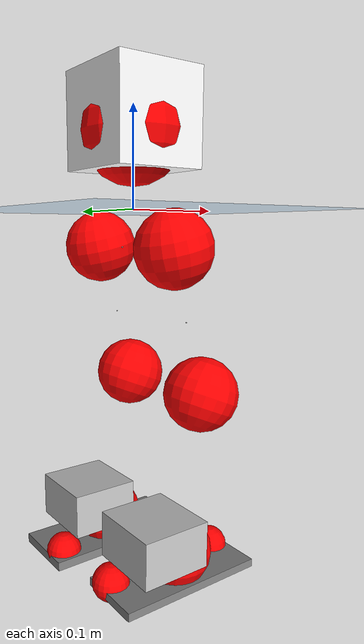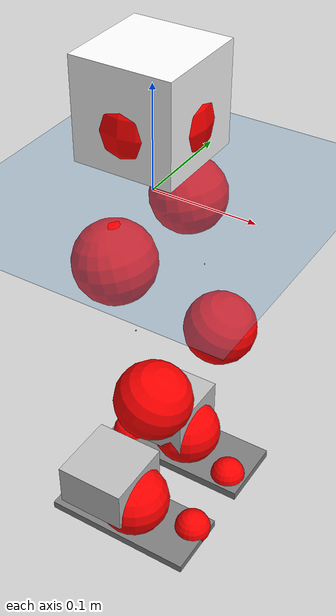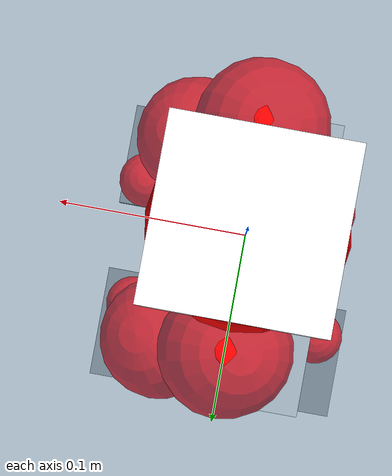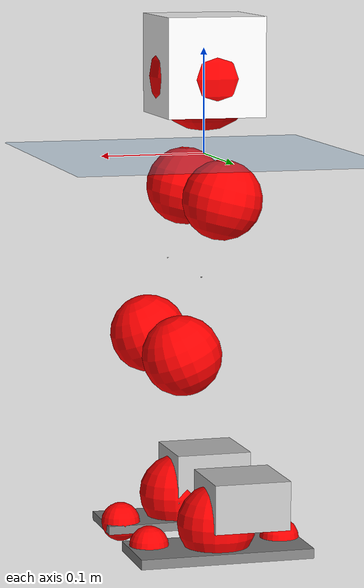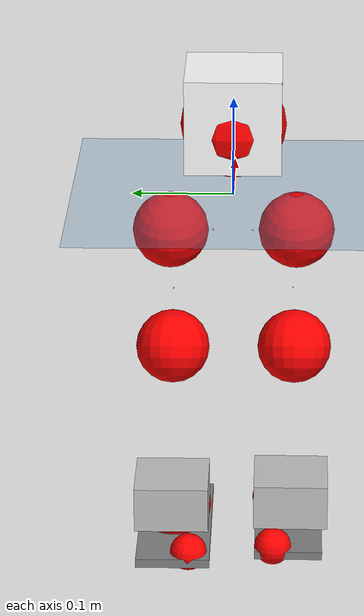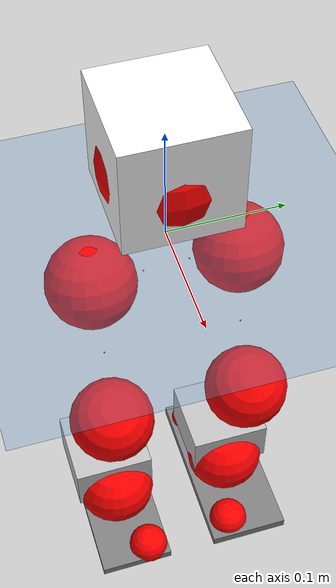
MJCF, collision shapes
<mujoco model="pi_12dof_release_v1">
  <compiler angle="radian" assetdir="assets" balanceinertia="true" inertiafromgeom="false"/>

  <option timestep="0.005" density="1.2" viscosity="2e-05"/>

  <size nkey="1"/>

  <visual>
    <quality shadowsize="8192"/>
    <map shadowclip="0.5"/>
  </visual>

  <default>
    <default class="/">
      <joint armature="0.01" damping="0.01" frictionloss="0.01"/>
      <geom contype="0" conaffinity="0" group="1" solref="-1000 -80"/>
      <site size="0.01 0.005 0.005" group="5"/>
      <general forcelimited="true" biastype="affine" gainprm="20" biasprm="0 -20 -0.5"/>
      <default class="foot">
        <geom size="0.0845 0.036 0.005" type="box" condim="6" group="4" priority="1" friction="0.9 0.2 0.2" solimp="0.015 1 0.005"/>
      </default>
      <default class="reward_collision_sphere">
        <geom group="5" rgba="1 0 0 1"/>
      </default>
    </default>
  </default>

  <asset>
    <texture type="skybox" colorspace="auto" name="//unnamed_texture_0" builtin="gradient" rgb1="0.95 0.95 0.95" rgb2="0.95 0.95 0.95" width="100" height="600"/>
    <texture type="2d" colorspace="auto" name="texplane" builtin="checker" rgb1="0.345 0.575 0.748" rgb2="0.345 0.575 0.748" markrgb="1 1 1" width="512" height="512"/>
    <material name="MatPlane" class="/" texture="texplane" texuniform="true" texrepeat="2 2" specular="0.9"/>
    <mesh name="baselink_1" class="/" file="baselink_1.STL"/>
    <mesh name="r_hip_pitch_link" class="/" file="r_hip_pitch_link.STL"/>
    <mesh name="r_hip_roll_link" class="/" file="r_hip_roll_link.STL"/>
    <mesh name="r_thigh_link" class="/" file="r_thigh_link.STL"/>
    <mesh name="r_calf_link" class="/" file="r_calf_link.STL"/>
    <mesh name="r_ankle_pitch_link" class="/" file="r_ankle_pitch_link.STL"/>
    <mesh name="r_ankle_roll_link" class="/" file="r_ankle_roll_link.STL"/>
    <mesh name="l_hip_pitch_link" class="/" file="l_hip_pitch_link.STL"/>
    <mesh name="l_hip_roll_link" class="/" file="l_hip_roll_link.STL"/>
    <mesh name="l_thigh_link" class="/" file="l_thigh_link.STL"/>
    <mesh name="l_calf_link" class="/" file="l_calf_link.STL"/>
    <mesh name="l_ankle_pitch_link" class="/" file="l_ankle_pitch_link.STL"/>
    <mesh name="l_ankle_roll_link" class="/" file="l_ankle_roll_link.STL"/>
  </asset>

  <worldbody>
    <geom name="floor" class="/" size="100 100 0.125" type="plane" group="0" material="MatPlane"/>
    <light name="toplight_shadow" class="/" pos="0 0 5" dir="0.0990148 0.0990148 -0.990148" type="directional" ambient="0.04 0.04 0.04" diffuse="0.55 0.55 0.55" specular="0.12 0.12 0.12"/>
    <light name="toplight_fill" class="/" pos="0 0 5" dir="0.0990148 0.0990148 -0.990148" type="directional" castshadow="false" ambient="0.04 0.04 0.04" diffuse="0.3 0.3 0.3" specular="0.08 0.08 0.08"/>
    <body name="trunk" pos="-0.000141753 -2.45454e-05 -0.00182502" quat="1 0.000186498 -0.000129258 0.000129978">
      <inertial pos="0.00237737 0.00236948 0.045658" quat="0.695263 0.00968549 0.00942728 0.718628" mass="1.77512" diaginertia="0.0079933 0.00283442 0.00594918"/>
      <joint name="//unnamed_joint_0" type="free"/>
      <geom name="//unnamed_geom_1" class="/" type="mesh" density="0" rgba="1 1 1 1" mesh="baselink_1"/>
      <geom name="//unnamed_geom_2" class="/" size="0.0470845 0.0470845 0.0470845" pos="0 0 0.0861095" type="box" rgba="1 1 1 1"/>
      <geom name="//unnamed_geom_3" class="reward_collision_sphere" size="0.051793" pos="0 0 0.0753458"/>
      <site name="imu" class="/" pos="-0.00353619 -0.00371297 -0.00264079" size="0.0094169"/>
      <camera name="track" class="/" pos="0 -1.58734 0" quat="0.707107 0.707107 0 0" mode="trackcom"/>
      <camera name="ego_camera" class="/" pos="0.0716274 0 0.193746" quat="-0.5 -0.5 0.5 0.5"/>
      <body name="r_hip_pitch_link" pos="0.000941143 -0.0189951 -0.0364152" quat="0.99219 0.000379425 -0.124733 0.000219518">
        <inertial pos="-0.00151052 -0.0440832 -0.000210651" quat="-0.0166691 0.704987 -0.029665 0.708403" mass="0.316826" diaginertia="8.73646e-05 3.10153e-05 0.000122833"/>
        <joint name="r_hip_pitch_joint" class="/" pos="0 0 0" axis="0.00821126 -0.999907 -0.0108708" stiffness="0.00663315" range="-1.74119 1.21705" armature="0.00900577" damping="0.00699296" frictionloss="0.00844654"/>
        <geom name="//unnamed_geom_4" class="/" type="mesh" density="0" rgba="0.75294 0.75294 0.75294 1" mesh="r_hip_pitch_link"/>
        <geom name="//unnamed_geom_5" class="/" size="0.000470845 0.000470845 0.000470845" type="box" rgba="0.75294 0.75294 0.75294 1"/>
        <body name="r_hip_roll_link" pos="0.000798829 -0.0436995 0.000644603" quat="1 3.10786e-05 8.57054e-05 3.95455e-05">
          <inertial pos="-0.0011694 -0.000589943 -0.0671819" quat="0.707193 -0.0773538 -0.0810698 0.698085" mass="0.309653" diaginertia="0.000265518 8.70692e-05 0.000173472"/>
          <joint name="r_hip_roll_joint" class="/" pos="0 0 0" axis="-0.999944 0.00347703 -0.010003" range="-0.117959 0.496726" armature="0.00974898" damping="0.0100685" frictionloss="0.00983155"/>
          <geom name="//unnamed_geom_6" class="/" type="mesh" density="0" rgba="0.75294 0.75294 0.75294 1" mesh="r_hip_roll_link"/>
          <geom name="//unnamed_geom_7" class="/" size="0.000470845 0.000470845 0.000470845" type="box" rgba="0.75294 0.75294 0.75294 1"/>
          <geom name="//unnamed_geom_8" class="reward_collision_sphere" size="0.0376676"/>
          <body name="r_thigh_link" pos="0.000287035 0.00251497 -0.0722014" quat="0.999999 0.00120934 0.000179108 -0.000521295">
            <inertial pos="0.000259186 0.000710134 -0.0516918" quat="0.737357 0.675503 -5.61328e-05 -0.000768767" mass="0.0924268" diaginertia="9.93423e-05 2.91128e-05 8.1941e-05"/>
            <joint name="r_thigh_joint" class="/" pos="0 0 0" axis="-0.000321678 -0.000692054 -1" range="-0.298449 0.556763" armature="0.0105574" damping="0.00300504" frictionloss="0.00947969"/>
            <geom name="//unnamed_geom_9" class="/" type="mesh" density="0" rgba="0.75294 0.75294 0.75294 1" mesh="r_thigh_link"/>
            <geom name="//unnamed_geom_10" class="/" size="0.000470845 0.000470845 0.000470845" type="box" rgba="0.75294 0.75294 0.75294 1"/>
            <body name="r_calf_link" pos="9.12569e-05 -0.00202505 -0.0761886" quat="0.947416 0.000923743 0.320002 -0.000262281">
              <inertial pos="-0.000936569 -0.00183985 -0.0741403" quat="0.999988 -0.00353568 0.000578935 0.00332557" mass="0.649574" diaginertia="0.00269369 0.00106119 0.000251955"/>
              <joint name="r_calf_joint" class="/" pos="0 0 0" axis="0.0130412 -0.999897 -0.00597063" stiffness="0.008617" range="-1.64833 0.649596" armature="0.00940105" damping="0.00800623" frictionloss="0.0098845"/>
              <geom name="//unnamed_geom_11" class="/" type="mesh" density="0" rgba="0.75294 0.75294 0.75294 1" mesh="r_calf_link"/>
              <geom name="//unnamed_geom_12" class="/" size="0.000470845 0.000470845 0.000470845" type="box" rgba="0.75294 0.75294 0.75294 1"/>
              <geom name="//unnamed_geom_13" class="reward_collision_sphere" size="0.0376676"/>
              <body name="r_ankle_pitch_link" pos="0.00329277 0.00172607 -0.150385" quat="0.980094 -0.000338292 -0.198532 -0.000279576">
                <inertial pos="0.00432589 0.00358095 -0.000192074" quat="0.00386779 0.707125 -0.00185103 0.707076" mass="0.151103" diaginertia="0.000244077 7.22708e-05 0.000176676"/>
                <joint name="r_ankle_pitch_joint" class="/" pos="0 0 0" axis="0.00079342 -0.999999 0.00108103" range="-1.32617 0.501185" armature="0.00950225" damping="0.0231826" frictionloss="0.0105837"/>
                <geom name="//unnamed_geom_14" class="/" type="mesh" density="0" rgba="0.75294 0.75294 0.75294 1" mesh="r_ankle_pitch_link"/>
                <geom name="//unnamed_geom_15" class="/" size="0.0367259 0.0376676 0.0235423" type="box" rgba="0.75294 0.75294 0.75294 1"/>
                <body name="r_ankle_roll_link" pos="0.0755005 0.00169499 0.00111804" quat="1 -0.000332209 0.000237932 2.3331e-05">
                  <inertial pos="-0.0225423 0.001112 -0.0129017" quat="0.559624 0.426692 0.436524 0.560537" mass="0.417437" diaginertia="0.000906966 0.000321587 0.000405366"/>
                  <joint name="r_ankle_roll_joint" class="/" pos="0 0 0" axis="-0.999996 -0.00248342 0.001355" range="-0.156015 0.166095" armature="0.00944791" damping="0.00826837" frictionloss="0.0106712"/>
                  <geom name="//unnamed_geom_16" class="/" type="mesh" density="0" rgba="0.75294 0.75294 0.75294 1" mesh="r_ankle_roll_link"/>
                  <geom name="//unnamed_geom_17" class="/" type="mesh" rgba="0.75294 0.75294 0.75294 1" mesh="r_ankle_roll_link"/>
                  <geom name="right_foot" class="foot" size="0.079037 0.0344478 0.00417517" pos="-0.0487066 0 -0.0473602"/>
                  <geom name="//unnamed_geom_19" class="reward_collision_sphere" size="0.0376676" pos="-0.0477516 0 -0.0215274"/>
                  <geom name="//unnamed_geom_20" class="reward_collision_sphere" size="0.0188338" pos="0.0143255 0.0158734 -0.0430547"/>
                  <geom name="//unnamed_geom_21" class="reward_collision_sphere" size="0.0188338" pos="-0.114604 0.0158734 -0.0430547"/>
                  <site name="right_foot" class="foot" pos="-0.0487066 0 -0.0473602" size="0.0094169"/>
                </body>
              </body>
            </body>
          </body>
        </body>
      </body>
      <body name="l_hip_pitch_link" pos="0.000167711 0.020254 -0.0355363" quat="0.992193 -0.000307644 -0.124711 -0.000322847">
        <inertial pos="0.000623501 0.0401352 -0.00127334" quat="-0.0265741 0.706033 0.0335664 0.706884" mass="0.314532" diaginertia="0.000100911 3.3671e-05 0.000145412"/>
        <joint name="l_hip_pitch_joint" class="/" pos="0 0 0" axis="2.37823e-06 1 1.13928e-05" range="-1.20226 1.69885" armature="0.00997696" damping="0.0133054" frictionloss="0.00827454"/>
        <geom name="//unnamed_geom_22" class="/" type="mesh" density="0" rgba="0.75294 0.75294 0.75294 1" mesh="l_hip_pitch_link"/>
        <geom name="//unnamed_geom_23" class="/" size="0.000470845 0.000470845 0.000470845" type="box" rgba="0.75294 0.75294 0.75294 1"/>
        <body name="l_hip_roll_link" pos="-0.000578281 0.041957 0.00011946" quat="1 1.11914e-05 2.39753e-05 -2.75745e-05">
          <inertial pos="-0.000381284 -0.00177544 -0.0653677" quat="0.698099 -0.0756452 -0.0767331 0.707848" mass="0.325609" diaginertia="0.00027666 8.9472e-05 0.000192654"/>
          <joint name="l_hip_roll_joint" class="/" pos="0 0 0" axis="-0.999997 0.00253939 -0.000680394" range="-0.447865 0.063914" armature="0.00903195" damping="0.00361007" frictionloss="0.00940462"/>
          <geom name="//unnamed_geom_24" class="/" type="mesh" density="0" rgba="0.75294 0.75294 0.75294 1" mesh="l_hip_roll_link"/>
          <geom name="//unnamed_geom_25" class="/" size="0.000470845 0.000470845 0.000470845" type="box" rgba="0.75294 0.75294 0.75294 1"/>
          <geom name="//unnamed_geom_26" class="reward_collision_sphere" size="0.0376676"/>
          <body name="l_thigh_link" pos="0.00159108 -0.00128952 -0.074685" quat="0.999999 -0.00100797 0.000744152 5.87327e-06">
            <inertial pos="0.00263337 -0.000730223 -0.0530051" quat="0.675453 0.737403 6.2515e-05 0.00020565" mass="0.0939496" diaginertia="0.000103567 3.17798e-05 8.908e-05"/>
            <joint name="l_thigh_joint" class="/" pos="0 0 0" axis="0.000546373 0.00579013 -0.999983" range="-0.621941 0.249086" armature="0.00946991" damping="0.0167242" frictionloss="0.00854972"/>
            <geom name="//unnamed_geom_27" class="/" type="mesh" density="0" rgba="0.75294 0.75294 0.75294 1" mesh="l_thigh_link"/>
            <geom name="//unnamed_geom_28" class="/" size="0.000470845 0.000470845 0.000470845" type="box" rgba="0.75294 0.75294 0.75294 1"/>
            <body name="l_calf_link" pos="0.000692026 0.00224836 -0.0754264" quat="0.947971 -5.85995e-05 0.318356 0.000834191">
              <inertial pos="-0.000458627 0.00262736 -0.0759155" quat="0.999824 0.0082081 0.00143851 0.0167973" mass="0.675589" diaginertia="0.0027891 0.00107707 0.000246899"/>
              <joint name="l_calf_joint" class="/" pos="0 0 0" axis="0.00351771 0.999992 -0.00201303" range="-0.670987 1.64746" armature="0.00934027" damping="0.00233276" frictionloss="0.00877342"/>
              <geom name="//unnamed_geom_29" class="/" type="mesh" density="0" rgba="0.75294 0.75294 0.75294 1" mesh="l_calf_link"/>
              <geom name="//unnamed_geom_30" class="/" size="0.000470845 0.000470845 0.000470845" type="box" rgba="0.75294 0.75294 0.75294 1"/>
              <geom name="//unnamed_geom_31" class="reward_collision_sphere" size="0.0376676"/>
              <body name="l_ankle_pitch_link" pos="0.000714942 -0.000392741 -0.153127" quat="0.980039 -9.74731e-05 -0.198805 -0.000175445">
                <inertial pos="0.00483529 0.00185972 0.000627134" quat="0.00474635 0.712623 -0.00151441 0.701529" mass="0.142363" diaginertia="0.000235063 6.72458e-05 0.000167403"/>
                <joint name="l_ankle_pitch_joint" class="/" pos="0 0 0" axis="-0.00794119 0.999902 -0.0115282" range="-0.51286 1.3045" armature="0.00955071" damping="0" frictionloss="0.00992038"/>
                <geom name="//unnamed_geom_32" class="/" type="mesh" density="0" rgba="0.75294 0.75294 0.75294 1" mesh="l_ankle_pitch_link"/>
                <geom name="//unnamed_geom_33" class="/" size="0.0367259 0.0376676 0.0235423" type="box" rgba="0.75294 0.75294 0.75294 1"/>
                <body name="l_ankle_roll_link" pos="0.0720172 -0.00180056 -0.000335443" quat="0.999999 -0.00100292 2.9272e-05 -0.00024982">
                  <inertial pos="-0.0238246 -0.0010224 -0.0154486" quat="0.570311 0.424096 0.434266 0.553445" mass="0.416623" diaginertia="0.000883945 0.000326825 0.000420378"/>
                  <joint name="l_ankle_roll_joint" class="/" pos="0 0 0" axis="-0.999913 0.0130948 -0.00153806" range="-0.147009 0.100909" armature="0.00942953" damping="0.00603438" frictionloss="0.00817888"/>
                  <geom name="//unnamed_geom_34" class="/" type="mesh" density="0" rgba="0.75294 0.75294 0.75294 1" mesh="l_ankle_roll_link"/>
                  <geom name="//unnamed_geom_35" class="/" type="mesh" rgba="0.75294 0.75294 0.75294 1" mesh="l_ankle_roll_link"/>
                  <geom name="left_foot" class="foot" size="0.0840145 0.0374708 0.00473473" pos="-0.0487066 0 -0.0473602"/>
                  <geom name="//unnamed_geom_37" class="reward_collision_sphere" size="0.0376676" pos="-0.0477516 0 -0.0215274"/>
                  <geom name="//unnamed_geom_38" class="reward_collision_sphere" size="0.0188338" pos="0.0143255 -0.0158734 -0.0430547"/>
                  <geom name="//unnamed_geom_39" class="reward_collision_sphere" size="0.0188338" pos="-0.114604 -0.0158734 -0.0430547"/>
                  <site name="left_foot" class="foot" pos="-0.0487066 0 -0.0473602" size="0.0094169"/>
                </body>
              </body>
            </body>
          </body>
        </body>
      </body>
    </body>
  </worldbody>

  <contact>
    <pair class="/" geom1="floor" geom2="right_foot" name="//unnamed_contact_1"/>
    <pair class="/" geom1="floor" geom2="left_foot" name="//unnamed_contact_0"/>
  </contact>

  <actuator>
    <general name="r_hip_pitch_joint" class="/" joint="r_hip_pitch_joint" forcerange="-18.4719 18.4719" gainprm="19.0571" biasprm="0 -19.0571 -0.459411"/>
    <general name="r_hip_roll_joint" class="/" joint="r_hip_roll_joint" forcerange="-19.9552 19.9552" gainprm="19.0571" biasprm="0 -19.0571 -0.459411"/>
    <general name="r_thigh_joint" class="/" joint="r_thigh_joint" forcerange="-18.9554 18.9554" gainprm="19.0571" biasprm="0 -19.0571 -0.459411"/>
    <general name="r_calf_joint" class="/" joint="r_calf_joint" forcerange="-19.1769 19.1769" gainprm="19.0571" biasprm="0 -19.0571 -0.459411"/>
    <general name="r_ankle_pitch_joint" class="/" joint="r_ankle_pitch_joint" forcerange="-20.7641 20.7641" gainprm="19.0571" biasprm="0 -19.0571 -0.459411"/>
    <general name="r_ankle_roll_joint" class="/" joint="r_ankle_roll_joint" forcerange="-21.7333 21.7333" gainprm="19.0571" biasprm="0 -19.0571 -0.459411"/>
    <general name="l_hip_pitch_joint" class="/" joint="l_hip_pitch_joint" forcerange="-19.244 19.244" gainprm="19.0571" biasprm="0 -19.0571 -0.459411"/>
    <general name="l_hip_roll_joint" class="/" joint="l_hip_roll_joint" forcerange="-17.8244 17.8244" gainprm="19.0571" biasprm="0 -19.0571 -0.459411"/>
    <general name="l_thigh_joint" class="/" joint="l_thigh_joint" forcerange="-18.99 18.99" gainprm="19.0571" biasprm="0 -19.0571 -0.459411"/>
    <general name="l_calf_joint" class="/" joint="l_calf_joint" forcerange="-20.4684 20.4684" gainprm="19.0571" biasprm="0 -19.0571 -0.459411"/>
    <general name="l_ankle_pitch_joint" class="/" joint="l_ankle_pitch_joint" forcerange="-19.2059 19.2059" gainprm="19.0571" biasprm="0 -19.0571 -0.459411"/>
    <general name="l_ankle_roll_joint" class="/" joint="l_ankle_roll_joint" forcerange="-19.6408 19.6408" gainprm="19.0571" biasprm="0 -19.0571 -0.459411"/>
  </actuator>

  <sensor>
    <gyro site="imu" name="imu_angular_velocity"/>
    <velocimeter site="imu" name="imu_linear_velocity"/>
    <framelinvel objtype="site" objname="left_foot" name="left_foot_global_linear_velocity"/>
    <framelinvel objtype="site" objname="right_foot" name="right_foot_global_linear_velocity"/>
  </sensor>

  <keyframe>
    <key name="home" qpos="0 0 0.291 1 0 0 0 0.4 0 0 -0.8 0.4 0 -0.4 0 0 0.8 -0.4 0"/>
  </keyframe>
</mujoco>
